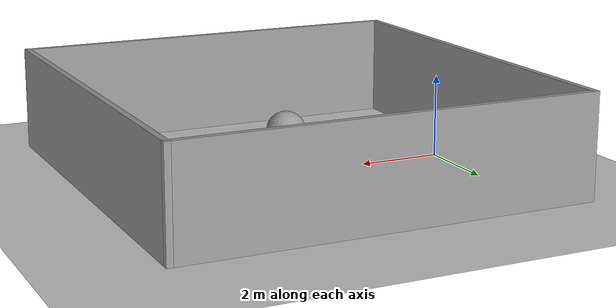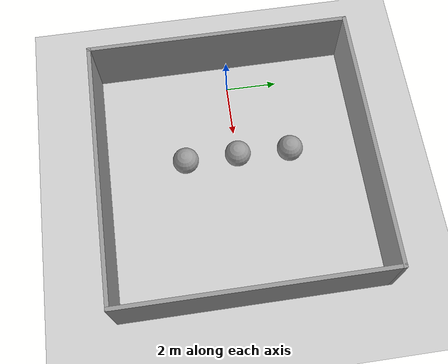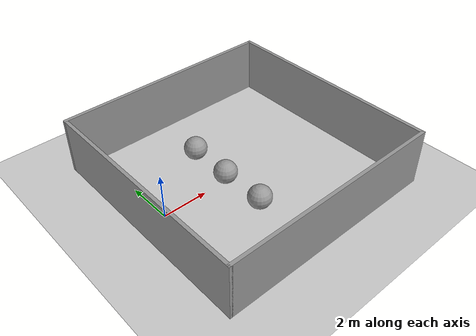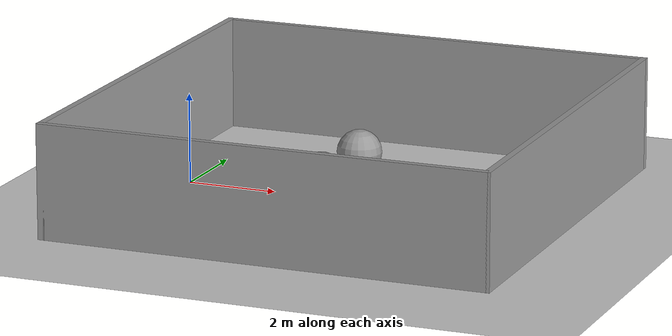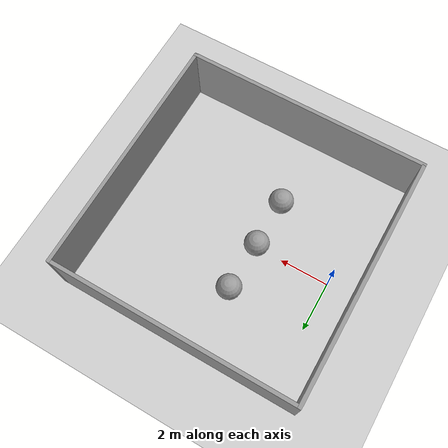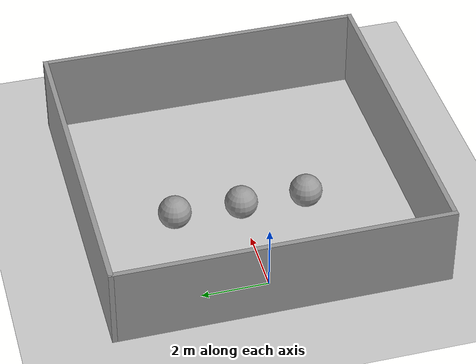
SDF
<sdf version="1.6">
 <world name="default">
  <light name="sun" type="directional">
   <pose>0 0 10 0 -0 0</pose>
   <diffuse>0.8 0.8 0.8 1</diffuse>
   <specular>0.2 0.2 0.2 1</specular>
   <attenuation>
    <range>1000</range>
    <constant>0.9</constant>
    <linear>0.01</linear>
    <quadratic>0.001</quadratic>
   </attenuation>
   <direction>-0.5 0.1 -0.9</direction>
  </light>
  <model name="ground_plane">
   <static>1</static>
   <link name="link">
    <collision name="collision">
     <geometry><plane><normal>0 0 1</normal><size>100 100</size></plane></geometry>
     <surface><friction><ode><mu>100</mu><mu2>50</mu2></ode></friction></surface>
    </collision>
    <visual name="visual">
     <cast_shadows>0</cast_shadows>
     <geometry><plane><normal>0 0 1</normal><size>100 100</size></plane></geometry>
     <material>
      <script><uri>file://media/materials/scripts/gazebo.material</uri><name>Gazebo/Grey</name></script>
     </material>
    </visual>
   </link>
  </model>
  <gravity>0 0 -9.8</gravity>
  <magnetic_field>6e-06 2.3e-05 -4.2e-05</magnetic_field>
  <atmosphere type="adiabatic"/>
  <physics name="default_physics" default="0" type="ode">
   <max_step_size>0.001</max_step_size>
   <real_time_factor>1</real_time_factor>
   <real_time_update_rate>1000</real_time_update_rate>
  </physics>
  <scene><ambient>0.4 0.4 0.4 1</ambient><background>0.7 0.7 0.7 1</background><shadows>1</shadows></scene>
  <spherical_coordinates>
   <surface_model>EARTH_WGS84</surface_model>
   <latitude_deg>0</latitude_deg>
   <longitude_deg>0</longitude_deg>
   <elevation>0</elevation>
   <heading_deg>0</heading_deg>
  </spherical_coordinates>
  <model name="irl_test1">
   <pose>3.83245 -0.1616 0 0 -0 0</pose>
   <link name="Wall_5">
    <collision name="Wall_5_Collision">
     <geometry><box><size>10 0.15 2.5</size></box></geometry>
     <pose>0 0 1.25 0 -0 0</pose>
    </collision>
    <visual name="Wall_5_Visual">
     <pose>0 0 1.25 0 -0 0</pose>
     <geometry><box><size>10 0.15 2.5</size></box></geometry>
     <material>
      <script><uri>file://media/materials/scripts/gazebo.material</uri><name>Gazebo/Grey</name></script>
      <ambient>1 1 1 1</ambient>
     </material>
     <meta><layer>0</layer></meta>
    </visual>
    <pose>0 -4.925 0 0 -0 0</pose>
   </link>
   <link name="Wall_6">
    <collision name="Wall_6_Collision">
     <geometry><box><size>10 0.15 2.5</size></box></geometry>
     <pose>0 0 1.25 0 -0 0</pose>
    </collision>
    <visual name="Wall_6_Visual">
     <pose>0 0 1.25 0 -0 0</pose>
     <geometry><box><size>10 0.15 2.5</size></box></geometry>
     <material>
      <script><uri>file://media/materials/scripts/gazebo.material</uri><name>Gazebo/Grey</name></script>
      <ambient>1 1 1 1</ambient>
     </material>
     <meta><layer>0</layer></meta>
    </visual>
    <pose>4.925 0 0 0 -0 1.5708</pose>
   </link>
   <link name="Wall_7">
    <collision name="Wall_7_Collision">
     <geometry><box><size>10 0.15 2.5</size></box></geometry>
     <pose>0 0 1.25 0 -0 0</pose>
    </collision>
    <visual name="Wall_7_Visual">
     <pose>0 0 1.25 0 -0 0</pose>
     <geometry><box><size>10 0.15 2.5</size></box></geometry>
     <material>
      <script><uri>file://media/materials/scripts/gazebo.material</uri><name>Gazebo/Grey</name></script>
      <ambient>1 1 1 1</ambient>
     </material>
     <meta><layer>0</layer></meta>
    </visual>
    <pose>0 4.925 0 0 -0 3.14159</pose>
   </link>
   <link name="Wall_8">
    <collision name="Wall_8_Collision">
     <geometry><box><size>10 0.15 2.5</size></box></geometry>
     <pose>0 0 1.25 0 -0 0</pose>
    </collision>
    <visual name="Wall_8_Visual">
     <pose>0 0 1.25 0 -0 0</pose>
     <geometry><box><size>10 0.15 2.5</size></box></geometry>
     <material>
      <script><uri>file://media/materials/scripts/gazebo.material</uri><name>Gazebo/Grey</name></script>
      <ambient>1 1 1 1</ambient>
     </material>
     <meta><layer>0</layer></meta>
    </visual>
    <pose>-4.925 0 0 0 -0 -1.5708</pose>
   </link>
   <static>1</static>
  </model>
  <model name="unit_sphere">
   <pose>3.15668 2.02931 0.5 0 -0 0</pose>
   <link name="link">
    <inertial>
     <mass>1</mass>
     <inertia><ixx>0.1</ixx><ixy>0</ixy><ixz>0</ixz><iyy>0.1</iyy><iyz>0</iyz><izz>0.1</izz></inertia>
    </inertial>
    <collision name="collision"><geometry><sphere><radius>0.5</radius></sphere></geometry></collision>
    <visual name="visual">
     <geometry><sphere><radius>0.5</radius></sphere></geometry>
     <material>
      <script><name>Gazebo/Grey</name><uri>file://media/materials/scripts/gazebo.material</uri></script>
     </material>
    </visual>
   </link>
  </model>
  <model name="unit_sphere_0">
   <pose>3.09509 0.004898 0.5 0 -0 0</pose>
   <link name="link">
    <inertial>
     <mass>1</mass>
     <inertia><ixx>0.1</ixx><ixy>0</ixy><ixz>0</ixz><iyy>0.1</iyy><iyz>0</iyz><izz>0.1</izz></inertia>
    </inertial>
    <collision name="collision"><geometry><sphere><radius>0.5</radius></sphere></geometry></collision>
    <visual name="visual">
     <geometry><sphere><radius>0.5</radius></sphere></geometry>
     <material>
      <script><name>Gazebo/Grey</name><uri>file://media/materials/scripts/gazebo.material</uri></script>
     </material>
    </visual>
   </link>
  </model>
  <model name="unit_sphere_1">
   <pose>3.10894 -2.00902 0.5 0 -0 0</pose>
   <link name="link">
    <inertial>
     <mass>1</mass>
     <inertia><ixx>0.1</ixx><ixy>0</ixy><ixz>0</ixz><iyy>0.1</iyy><iyz>0</iyz><izz>0.1</izz></inertia>
    </inertial>
    <collision name="collision"><geometry><sphere><radius>0.5</radius></sphere></geometry></collision>
    <visual name="visual">
     <geometry><sphere><radius>0.5</radius></sphere></geometry>
     <material>
      <script><name>Gazebo/Grey</name><uri>file://media/materials/scripts/gazebo.material</uri></script>
     </material>
    </visual>
   </link>
  </model>
 </world>
</sdf>
